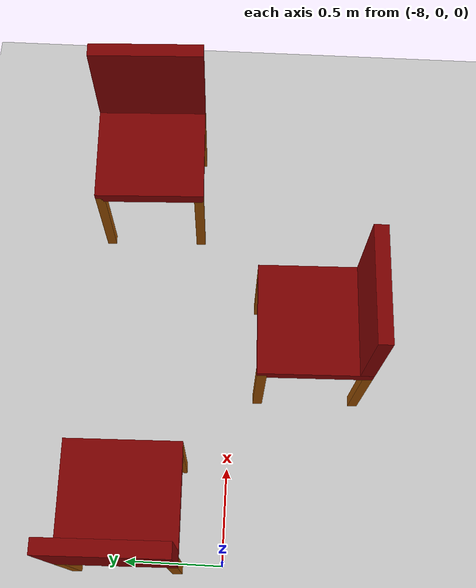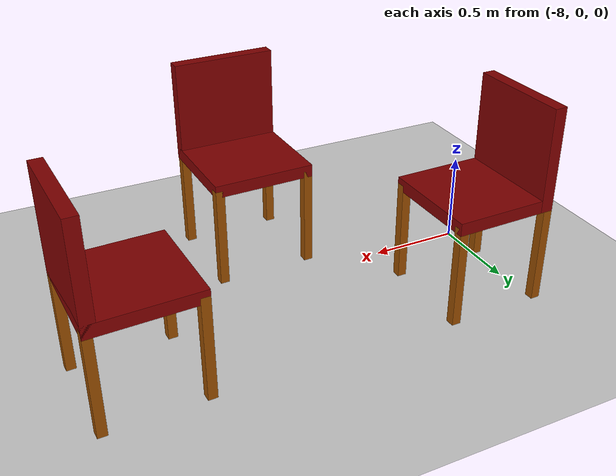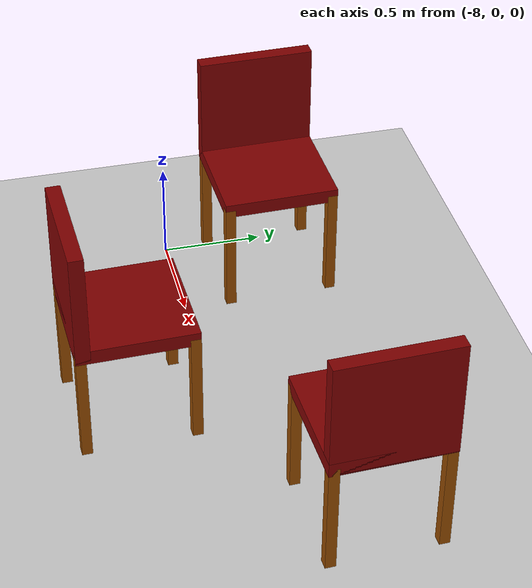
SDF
<sdf version="1.6">
 <world name="default">
  <model name="ground_plane">
   <static>1</static>
   <link name="link">
    <collision name="collision">
     <geometry><plane><normal>0 0 1</normal><size>100 100</size></plane></geometry>
     <surface>
      <contact><collide_bitmask>65535</collide_bitmask></contact>
      <friction><ode><mu>100</mu><mu2>50</mu2></ode></friction>
     </surface>
    </collision>
    <visual name="visual">
     <cast_shadows>0</cast_shadows>
     <geometry><plane><normal>0 0 1</normal><size>100 100</size></plane></geometry>
     <material>
      <script><uri>file://media/materials/scripts/gazebo.material</uri><name>Gazebo/Grey</name></script>
     </material>
    </visual>
   </link>
  </model>
  <model name="chair_3">
   <link name="link_0">
    <inertial>
     <mass>1</mass>
     <inertia>
      <ixx>0.166667</ixx>
      <ixy>0</ixy>
      <ixz>0</ixz>
      <iyy>0.166667</iyy>
      <iyz>0</iyz>
      <izz>0.166667</izz>
     </inertia>
    </inertial>
    <pose>0.000435 0.041667 0.148333 0 -0 0</pose>
    <visual name="visual">
     <geometry><box><size>0.57 0.57 0.07</size></box></geometry>
     <material>
      <lighting>1</lighting>
      <script><uri>file://media/materials/scripts/gazebo.material</uri><name>Gazebo/Grey</name></script>
      <shader type="vertex"><normal_map>__default__</normal_map></shader>
      <ambient>0.502 0 0 1</ambient>
      <diffuse>0.7 0.7 0.7 1</diffuse>
      <specular>0.01 0.01 0.01 1</specular>
      <emissive>0 0 0 1</emissive>
     </material>
    </visual>
    <collision name="collision">
     <geometry><box><size>0.57 0.57 0.07</size></box></geometry>
     <surface>
      <friction>
       <ode><mu>1</mu><mu2>1</mu2><fdir1>0 0 0</fdir1><slip1>0</slip1><slip2>0</slip2></ode>
       <torsional>
        <coefficient>1</coefficient>
        <patch_radius>0</patch_radius>
        <surface_radius>0</surface_radius>
        <use_patch_radius>1</use_patch_radius>
        <ode><slip>0</slip></ode>
       </torsional>
      </friction>
      <bounce><restitution_coefficient>0</restitution_coefficient><threshold>1e+06</threshold></bounce>
      <contact>
       <collide_without_contact>0</collide_without_contact>
       <collide_without_contact_bitmask>1</collide_without_contact_bitmask>
       <collide_bitmask>1</collide_bitmask>
       <ode>
        <soft_cfm>0</soft_cfm>
        <soft_erp>0.2</soft_erp>
        <kp>1e+13</kp>
        <kd>1</kd>
        <max_vel>0.01</max_vel>
        <min_depth>0</min_depth>
       </ode>
       <bullet>
        <split_impulse>1</split_impulse>
        <split_impulse_penetration_threshold>-0.01</split_impulse_penetration_threshold>
        <soft_cfm>0</soft_cfm>
        <soft_erp>0.2</soft_erp>
        <kp>1e+13</kp>
        <kd>1</kd>
       </bullet>
      </contact>
     </surface>
    </collision>
   </link>
   <link name="link_1">
    <inertial>
     <mass>1</mass>
     <inertia>
      <ixx>0.166667</ixx>
      <ixy>0</ixy>
      <ixz>0</ixz>
      <iyy>0.166667</iyy>
      <iyz>0</iyz>
      <izz>0.166667</izz>
     </inertia>
    </inertial>
    <pose>0.000435 -0.208333 0.398333 0 -0 0</pose>
    <visual name="visual">
     <geometry><box><size>0.57 0.07 0.57</size></box></geometry>
     <material>
      <lighting>1</lighting>
      <script><uri>file://media/materials/scripts/gazebo.material</uri><name>Gazebo/Grey</name></script>
      <shader type="vertex"><normal_map>__default__</normal_map></shader>
      <ambient>0.502 0 0 1</ambient>
      <diffuse>0.7 0.7 0.7 1</diffuse>
      <specular>0.01 0.01 0.01 1</specular>
      <emissive>0 0 0 1</emissive>
     </material>
    </visual>
    <collision name="collision">
     <geometry><box><size>0.57 0.07 0.57</size></box></geometry>
     <surface>
      <friction>
       <ode><mu>1</mu><mu2>1</mu2><fdir1>0 0 0</fdir1><slip1>0</slip1><slip2>0</slip2></ode>
       <torsional>
        <coefficient>1</coefficient>
        <patch_radius>0</patch_radius>
        <surface_radius>0</surface_radius>
        <use_patch_radius>1</use_patch_radius>
        <ode><slip>0</slip></ode>
       </torsional>
      </friction>
      <bounce><restitution_coefficient>0</restitution_coefficient><threshold>1e+06</threshold></bounce>
      <contact>
       <collide_without_contact>0</collide_without_contact>
       <collide_without_contact_bitmask>1</collide_without_contact_bitmask>
       <collide_bitmask>1</collide_bitmask>
       <ode>
        <soft_cfm>0</soft_cfm>
        <soft_erp>0.2</soft_erp>
        <kp>1e+13</kp>
        <kd>1</kd>
        <max_vel>0.01</max_vel>
        <min_depth>0</min_depth>
       </ode>
       <bullet>
        <split_impulse>1</split_impulse>
        <split_impulse_penetration_threshold>-0.01</split_impulse_penetration_threshold>
        <soft_cfm>0</soft_cfm>
        <soft_erp>0.2</soft_erp>
        <kp>1e+13</kp>
        <kd>1</kd>
       </bullet>
      </contact>
     </surface>
    </collision>
   </link>
   <link name="link_2">
    <inertial>
     <mass>1</mass>
     <inertia>
      <ixx>0.166667</ixx>
      <ixy>0</ixy>
      <ixz>0</ixz>
      <iyy>0.166667</iyy>
      <iyz>0</iyz>
      <izz>0.166667</izz>
     </inertia>
    </inertial>
    <pose>0.257825 -0.218333 -0.136667 0 -0 0</pose>
    <visual name="visual">
     <geometry><box><size>0.05 0.05 0.57</size></box></geometry>
     <material>
      <lighting>1</lighting>
      <script><uri>file://media/materials/scripts/gazebo.material</uri><name>Gazebo/Grey</name></script>
      <shader type="vertex"><normal_map>__default__</normal_map></shader>
      <ambient>0.588 0.294 0 1</ambient>
      <diffuse>0.7 0.7 0.7 1</diffuse>
      <specular>0.01 0.01 0.01 1</specular>
      <emissive>0 0 0 1</emissive>
     </material>
    </visual>
    <collision name="collision">
     <geometry><box><size>0.05 0.05 0.57</size></box></geometry>
     <surface>
      <friction>
       <ode><mu>1</mu><mu2>1</mu2><fdir1>0 0 0</fdir1><slip1>0</slip1><slip2>0</slip2></ode>
       <torsional>
        <coefficient>1</coefficient>
        <patch_radius>0</patch_radius>
        <surface_radius>0</surface_radius>
        <use_patch_radius>1</use_patch_radius>
        <ode><slip>0</slip></ode>
       </torsional>
      </friction>
      <bounce><restitution_coefficient>0</restitution_coefficient><threshold>1e+06</threshold></bounce>
      <contact>
       <collide_without_contact>0</collide_without_contact>
       <collide_without_contact_bitmask>1</collide_without_contact_bitmask>
       <collide_bitmask>1</collide_bitmask>
       <ode>
        <soft_cfm>0</soft_cfm>
        <soft_erp>0.2</soft_erp>
        <kp>1e+13</kp>
        <kd>1</kd>
        <max_vel>0.01</max_vel>
        <min_depth>0</min_depth>
       </ode>
       <bullet>
        <split_impulse>1</split_impulse>
        <split_impulse_penetration_threshold>-0.01</split_impulse_penetration_threshold>
        <soft_cfm>0</soft_cfm>
        <soft_erp>0.2</soft_erp>
        <kp>1e+13</kp>
        <kd>1</kd>
       </bullet>
      </contact>
     </surface>
    </collision>
   </link>
   <link name="link_2_clone">
    <inertial>
     <mass>1</mass>
     <inertia>
      <ixx>0.166667</ixx>
      <ixy>0</ixy>
      <ixz>0</ixz>
      <iyy>0.166667</iyy>
      <iyz>0</iyz>
      <izz>0.166667</izz>
     </inertia>
    </inertial>
    <pose>-0.259565 -0.218333 -0.136667 0 -0 0</pose>
    <visual name="visual">
     <geometry><box><size>0.05 0.05 0.57</size></box></geometry>
     <material>
      <lighting>1</lighting>
      <script><uri>file://media/materials/scripts/gazebo.material</uri><name>Gazebo/Grey</name></script>
      <shader type="vertex"><normal_map>__default__</normal_map></shader>
      <ambient>0.588 0.294 0 1</ambient>
      <diffuse>0.7 0.7 0.7 1</diffuse>
      <specular>0.01 0.01 0.01 1</specular>
      <emissive>0 0 0 1</emissive>
     </material>
    </visual>
    <collision name="collision">
     <geometry><box><size>0.05 0.05 0.57</size></box></geometry>
     <surface>
      <friction>
       <ode><mu>1</mu><mu2>1</mu2><fdir1>0 0 0</fdir1><slip1>0</slip1><slip2>0</slip2></ode>
       <torsional>
        <coefficient>1</coefficient>
        <patch_radius>0</patch_radius>
        <surface_radius>0</surface_radius>
        <use_patch_radius>1</use_patch_radius>
        <ode><slip>0</slip></ode>
       </torsional>
      </friction>
      <bounce><restitution_coefficient>0</restitution_coefficient><threshold>1e+06</threshold></bounce>
      <contact>
       <collide_without_contact>0</collide_without_contact>
       <collide_without_contact_bitmask>1</collide_without_contact_bitmask>
       <collide_bitmask>1</collide_bitmask>
       <ode>
        <soft_cfm>0</soft_cfm>
        <soft_erp>0.2</soft_erp>
        <kp>1e+13</kp>
        <kd>1</kd>
        <max_vel>0.01</max_vel>
        <min_depth>0</min_depth>
       </ode>
       <bullet>
        <split_impulse>1</split_impulse>
        <split_impulse_penetration_threshold>-0.01</split_impulse_penetration_threshold>
        <soft_cfm>0</soft_cfm>
        <soft_erp>0.2</soft_erp>
        <kp>1e+13</kp>
        <kd>1</kd>
       </bullet>
      </contact>
     </surface>
    </collision>
   </link>
   <link name="link_2_clone_clone">
    <inertial>
     <mass>1</mass>
     <inertia>
      <ixx>0.166667</ixx>
      <ixy>0</ixy>
      <ixz>0</ixz>
      <iyy>0.166667</iyy>
      <iyz>0</iyz>
      <izz>0.166667</izz>
     </inertia>
    </inertial>
    <pose>-0.259565 0.301667 -0.136667 0 -0 0</pose>
    <visual name="visual">
     <geometry><box><size>0.05 0.05 0.57</size></box></geometry>
     <material>
      <lighting>1</lighting>
      <script><uri>file://media/materials/scripts/gazebo.material</uri><name>Gazebo/Grey</name></script>
      <shader type="vertex"><normal_map>__default__</normal_map></shader>
      <ambient>0.588 0.294 0 1</ambient>
      <diffuse>0.7 0.7 0.7 1</diffuse>
      <specular>0.01 0.01 0.01 1</specular>
      <emissive>0 0 0 1</emissive>
     </material>
    </visual>
    <collision name="collision">
     <geometry><box><size>0.05 0.05 0.57</size></box></geometry>
     <surface>
      <friction>
       <ode><mu>1</mu><mu2>1</mu2><fdir1>0 0 0</fdir1><slip1>0</slip1><slip2>0</slip2></ode>
       <torsional>
        <coefficient>1</coefficient>
        <patch_radius>0</patch_radius>
        <surface_radius>0</surface_radius>
        <use_patch_radius>1</use_patch_radius>
        <ode><slip>0</slip></ode>
       </torsional>
      </friction>
      <bounce><restitution_coefficient>0</restitution_coefficient><threshold>1e+06</threshold></bounce>
      <contact>
       <collide_without_contact>0</collide_without_contact>
       <collide_without_contact_bitmask>1</collide_without_contact_bitmask>
       <collide_bitmask>1</collide_bitmask>
       <ode>
        <soft_cfm>0</soft_cfm>
        <soft_erp>0.2</soft_erp>
        <kp>1e+13</kp>
        <kd>1</kd>
        <max_vel>0.01</max_vel>
        <min_depth>0</min_depth>
       </ode>
       <bullet>
        <split_impulse>1</split_impulse>
        <split_impulse_penetration_threshold>-0.01</split_impulse_penetration_threshold>
        <soft_cfm>0</soft_cfm>
        <soft_erp>0.2</soft_erp>
        <kp>1e+13</kp>
        <kd>1</kd>
       </bullet>
      </contact>
     </surface>
    </collision>
   </link>
   <link name="link_2_clone_clone_0">
    <inertial>
     <mass>1</mass>
     <inertia>
      <ixx>0.166667</ixx>
      <ixy>0</ixy>
      <ixz>0</ixz>
      <iyy>0.166667</iyy>
      <iyz>0</iyz>
      <izz>0.166667</izz>
     </inertia>
    </inertial>
    <pose>0.260435 0.301667 -0.136667 0 -0 0</pose>
    <visual name="visual">
     <geometry><box><size>0.05 0.05 0.57</size></box></geometry>
     <material>
      <lighting>1</lighting>
      <script><uri>file://media/materials/scripts/gazebo.material</uri><name>Gazebo/Grey</name></script>
      <shader type="vertex"><normal_map>__default__</normal_map></shader>
      <ambient>0.588 0.294 0 1</ambient>
      <diffuse>0.7 0.7 0.7 1</diffuse>
      <specular>0.01 0.01 0.01 1</specular>
      <emissive>0 0 0 1</emissive>
     </material>
    </visual>
    <collision name="collision">
     <geometry><box><size>0.05 0.05 0.57</size></box></geometry>
     <surface>
      <friction>
       <ode><mu>1</mu><mu2>1</mu2><fdir1>0 0 0</fdir1><slip1>0</slip1><slip2>0</slip2></ode>
       <torsional>
        <coefficient>1</coefficient>
        <patch_radius>0</patch_radius>
        <surface_radius>0</surface_radius>
        <use_patch_radius>1</use_patch_radius>
        <ode><slip>0</slip></ode>
       </torsional>
      </friction>
      <bounce><restitution_coefficient>0</restitution_coefficient><threshold>1e+06</threshold></bounce>
      <contact>
       <collide_without_contact>0</collide_without_contact>
       <collide_without_contact_bitmask>1</collide_without_contact_bitmask>
       <collide_bitmask>1</collide_bitmask>
       <ode>
        <soft_cfm>0</soft_cfm>
        <soft_erp>0.2</soft_erp>
        <kp>1e+13</kp>
        <kd>1</kd>
        <max_vel>0.01</max_vel>
        <min_depth>0</min_depth>
       </ode>
       <bullet>
        <split_impulse>1</split_impulse>
        <split_impulse_penetration_threshold>-0.01</split_impulse_penetration_threshold>
        <soft_cfm>0</soft_cfm>
        <soft_erp>0.2</soft_erp>
        <kp>1e+13</kp>
        <kd>1</kd>
       </bullet>
      </contact>
     </surface>
    </collision>
   </link>
   <joint name="link_0_JOINT_0" type="fixed">
    <parent>link_0</parent>
    <child>link_1</child>
    <physics>
     <ode><limit><cfm>0</cfm><erp>0.2</erp></limit><suspension><cfm>0</cfm><erp>0.2</erp></suspension></ode>
    </physics>
   </joint>
   <joint name="link_0_JOINT_4" type="fixed">
    <parent>link_0</parent>
    <child>link_2</child>
    <physics>
     <ode><limit><cfm>0</cfm><erp>0.2</erp></limit><suspension><cfm>0</cfm><erp>0.2</erp></suspension></ode>
    </physics>
   </joint>
   <joint name="link_0_JOINT_5" type="fixed">
    <parent>link_0</parent>
    <child>link_2_clone</child>
    <physics>
     <ode><limit><cfm>0</cfm><erp>0.2</erp></limit><suspension><cfm>0</cfm><erp>0.2</erp></suspension></ode>
    </physics>
   </joint>
   <joint name="link_0_JOINT_6" type="fixed">
    <parent>link_0</parent>
    <child>link_2_clone_clone_0</child>
    <physics>
     <ode><limit><cfm>0</cfm><erp>0.2</erp></limit><suspension><cfm>0</cfm><erp>0.2</erp></suspension></ode>
    </physics>
   </joint>
   <joint name="link_0_JOINT_7" type="fixed">
    <parent>link_0</parent>
    <child>link_2_clone_clone</child>
    <physics>
     <ode><limit><cfm>0</cfm><erp>0.2</erp></limit><suspension><cfm>0</cfm><erp>0.2</erp></suspension></ode>
    </physics>
   </joint>
   <static>0</static>
   <pose>-5.87253 0.484838 0.421667 0 -1e-06 1.60775</pose>
  </model>
  <model name="chair_4">
   <link name="link_0">
    <inertial>
     <mass>1</mass>
     <inertia>
      <ixx>0.166667</ixx>
      <ixy>0</ixy>
      <ixz>0</ixz>
      <iyy>0.166667</iyy>
      <iyz>0</iyz>
      <izz>0.166667</izz>
     </inertia>
    </inertial>
    <pose>0.000435 0.041667 0.148333 0 -0 0</pose>
    <visual name="visual">
     <geometry><box><size>0.57 0.57 0.07</size></box></geometry>
     <material>
      <lighting>1</lighting>
      <script><uri>file://media/materials/scripts/gazebo.material</uri><name>Gazebo/Grey</name></script>
      <shader type="vertex"><normal_map>__default__</normal_map></shader>
      <ambient>0.502 0 0 1</ambient>
      <diffuse>0.7 0.7 0.7 1</diffuse>
      <specular>0.01 0.01 0.01 1</specular>
      <emissive>0 0 0 1</emissive>
     </material>
    </visual>
    <collision name="collision">
     <geometry><box><size>0.57 0.57 0.07</size></box></geometry>
     <surface>
      <friction>
       <ode><mu>1</mu><mu2>1</mu2><fdir1>0 0 0</fdir1><slip1>0</slip1><slip2>0</slip2></ode>
       <torsional>
        <coefficient>1</coefficient>
        <patch_radius>0</patch_radius>
        <surface_radius>0</surface_radius>
        <use_patch_radius>1</use_patch_radius>
        <ode><slip>0</slip></ode>
       </torsional>
      </friction>
      <bounce><restitution_coefficient>0</restitution_coefficient><threshold>1e+06</threshold></bounce>
      <contact>
       <collide_without_contact>0</collide_without_contact>
       <collide_without_contact_bitmask>1</collide_without_contact_bitmask>
       <collide_bitmask>1</collide_bitmask>
       <ode>
        <soft_cfm>0</soft_cfm>
        <soft_erp>0.2</soft_erp>
        <kp>1e+13</kp>
        <kd>1</kd>
        <max_vel>0.01</max_vel>
        <min_depth>0</min_depth>
       </ode>
       <bullet>
        <split_impulse>1</split_impulse>
        <split_impulse_penetration_threshold>-0.01</split_impulse_penetration_threshold>
        <soft_cfm>0</soft_cfm>
        <soft_erp>0.2</soft_erp>
        <kp>1e+13</kp>
        <kd>1</kd>
       </bullet>
      </contact>
     </surface>
    </collision>
   </link>
   <link name="link_1">
    <inertial>
     <mass>1</mass>
     <inertia>
      <ixx>0.166667</ixx>
      <ixy>0</ixy>
      <ixz>0</ixz>
      <iyy>0.166667</iyy>
      <iyz>0</iyz>
      <izz>0.166667</izz>
     </inertia>
    </inertial>
    <pose>0.000435 -0.208333 0.398333 0 -0 0</pose>
    <visual name="visual">
     <geometry><box><size>0.57 0.07 0.57</size></box></geometry>
     <material>
      <lighting>1</lighting>
      <script><uri>file://media/materials/scripts/gazebo.material</uri><name>Gazebo/Grey</name></script>
      <shader type="vertex"><normal_map>__default__</normal_map></shader>
      <ambient>0.502 0 0 1</ambient>
      <diffuse>0.7 0.7 0.7 1</diffuse>
      <specular>0.01 0.01 0.01 1</specular>
      <emissive>0 0 0 1</emissive>
     </material>
    </visual>
    <collision name="collision">
     <geometry><box><size>0.57 0.07 0.57</size></box></geometry>
     <surface>
      <friction>
       <ode><mu>1</mu><mu2>1</mu2><fdir1>0 0 0</fdir1><slip1>0</slip1><slip2>0</slip2></ode>
       <torsional>
        <coefficient>1</coefficient>
        <patch_radius>0</patch_radius>
        <surface_radius>0</surface_radius>
        <use_patch_radius>1</use_patch_radius>
        <ode><slip>0</slip></ode>
       </torsional>
      </friction>
      <bounce><restitution_coefficient>0</restitution_coefficient><threshold>1e+06</threshold></bounce>
      <contact>
       <collide_without_contact>0</collide_without_contact>
       <collide_without_contact_bitmask>1</collide_without_contact_bitmask>
       <collide_bitmask>1</collide_bitmask>
       <ode>
        <soft_cfm>0</soft_cfm>
        <soft_erp>0.2</soft_erp>
        <kp>1e+13</kp>
        <kd>1</kd>
        <max_vel>0.01</max_vel>
        <min_depth>0</min_depth>
       </ode>
       <bullet>
        <split_impulse>1</split_impulse>
        <split_impulse_penetration_threshold>-0.01</split_impulse_penetration_threshold>
        <soft_cfm>0</soft_cfm>
        <soft_erp>0.2</soft_erp>
        <kp>1e+13</kp>
        <kd>1</kd>
       </bullet>
      </contact>
     </surface>
    </collision>
   </link>
   <link name="link_2">
    <inertial>
     <mass>1</mass>
     <inertia>
      <ixx>0.166667</ixx>
      <ixy>0</ixy>
      <ixz>0</ixz>
      <iyy>0.166667</iyy>
      <iyz>0</iyz>
      <izz>0.166667</izz>
     </inertia>
    </inertial>
    <pose>0.257825 -0.218333 -0.136667 0 -0 0</pose>
    <visual name="visual">
     <geometry><box><size>0.05 0.05 0.57</size></box></geometry>
     <material>
      <lighting>1</lighting>
      <script><uri>file://media/materials/scripts/gazebo.material</uri><name>Gazebo/Grey</name></script>
      <shader type="vertex"><normal_map>__default__</normal_map></shader>
      <ambient>0.588 0.294 0 1</ambient>
      <diffuse>0.7 0.7 0.7 1</diffuse>
      <specular>0.01 0.01 0.01 1</specular>
      <emissive>0 0 0 1</emissive>
     </material>
    </visual>
    <collision name="collision">
     <geometry><box><size>0.05 0.05 0.57</size></box></geometry>
     <surface>
      <friction>
       <ode><mu>1</mu><mu2>1</mu2><fdir1>0 0 0</fdir1><slip1>0</slip1><slip2>0</slip2></ode>
       <torsional>
        <coefficient>1</coefficient>
        <patch_radius>0</patch_radius>
        <surface_radius>0</surface_radius>
        <use_patch_radius>1</use_patch_radius>
        <ode><slip>0</slip></ode>
       </torsional>
      </friction>
      <bounce><restitution_coefficient>0</restitution_coefficient><threshold>1e+06</threshold></bounce>
      <contact>
       <collide_without_contact>0</collide_without_contact>
       <collide_without_contact_bitmask>1</collide_without_contact_bitmask>
       <collide_bitmask>1</collide_bitmask>
       <ode>
        <soft_cfm>0</soft_cfm>
        <soft_erp>0.2</soft_erp>
        <kp>1e+13</kp>
        <kd>1</kd>
        <max_vel>0.01</max_vel>
        <min_depth>0</min_depth>
       </ode>
       <bullet>
        <split_impulse>1</split_impulse>
        <split_impulse_penetration_threshold>-0.01</split_impulse_penetration_threshold>
        <soft_cfm>0</soft_cfm>
        <soft_erp>0.2</soft_erp>
        <kp>1e+13</kp>
        <kd>1</kd>
       </bullet>
      </contact>
     </surface>
    </collision>
   </link>
   <link name="link_2_clone">
    <inertial>
     <mass>1</mass>
     <inertia>
      <ixx>0.166667</ixx>
      <ixy>0</ixy>
      <ixz>0</ixz>
      <iyy>0.166667</iyy>
      <iyz>0</iyz>
      <izz>0.166667</izz>
     </inertia>
    </inertial>
    <pose>-0.259565 -0.218333 -0.136667 0 -0 0</pose>
    <visual name="visual">
     <geometry><box><size>0.05 0.05 0.57</size></box></geometry>
     <material>
      <lighting>1</lighting>
      <script><uri>file://media/materials/scripts/gazebo.material</uri><name>Gazebo/Grey</name></script>
      <shader type="vertex"><normal_map>__default__</normal_map></shader>
      <ambient>0.588 0.294 0 1</ambient>
      <diffuse>0.7 0.7 0.7 1</diffuse>
      <specular>0.01 0.01 0.01 1</specular>
      <emissive>0 0 0 1</emissive>
     </material>
    </visual>
    <collision name="collision">
     <geometry><box><size>0.05 0.05 0.57</size></box></geometry>
     <surface>
      <friction>
       <ode><mu>1</mu><mu2>1</mu2><fdir1>0 0 0</fdir1><slip1>0</slip1><slip2>0</slip2></ode>
       <torsional>
        <coefficient>1</coefficient>
        <patch_radius>0</patch_radius>
        <surface_radius>0</surface_radius>
        <use_patch_radius>1</use_patch_radius>
        <ode><slip>0</slip></ode>
       </torsional>
      </friction>
      <bounce><restitution_coefficient>0</restitution_coefficient><threshold>1e+06</threshold></bounce>
      <contact>
       <collide_without_contact>0</collide_without_contact>
       <collide_without_contact_bitmask>1</collide_without_contact_bitmask>
       <collide_bitmask>1</collide_bitmask>
       <ode>
        <soft_cfm>0</soft_cfm>
        <soft_erp>0.2</soft_erp>
        <kp>1e+13</kp>
        <kd>1</kd>
        <max_vel>0.01</max_vel>
        <min_depth>0</min_depth>
       </ode>
       <bullet>
        <split_impulse>1</split_impulse>
        <split_impulse_penetration_threshold>-0.01</split_impulse_penetration_threshold>
        <soft_cfm>0</soft_cfm>
        <soft_erp>0.2</soft_erp>
        <kp>1e+13</kp>
        <kd>1</kd>
       </bullet>
      </contact>
     </surface>
    </collision>
   </link>
   <link name="link_2_clone_clone">
    <inertial>
     <mass>1</mass>
     <inertia>
      <ixx>0.166667</ixx>
      <ixy>0</ixy>
      <ixz>0</ixz>
      <iyy>0.166667</iyy>
      <iyz>0</iyz>
      <izz>0.166667</izz>
     </inertia>
    </inertial>
    <pose>-0.259565 0.301667 -0.136667 0 -0 0</pose>
    <visual name="visual">
     <geometry><box><size>0.05 0.05 0.57</size></box></geometry>
     <material>
      <lighting>1</lighting>
      <script><uri>file://media/materials/scripts/gazebo.material</uri><name>Gazebo/Grey</name></script>
      <shader type="vertex"><normal_map>__default__</normal_map></shader>
      <ambient>0.588 0.294 0 1</ambient>
      <diffuse>0.7 0.7 0.7 1</diffuse>
      <specular>0.01 0.01 0.01 1</specular>
      <emissive>0 0 0 1</emissive>
     </material>
    </visual>
    <collision name="collision">
     <geometry><box><size>0.05 0.05 0.57</size></box></geometry>
     <surface>
      <friction>
       <ode><mu>1</mu><mu2>1</mu2><fdir1>0 0 0</fdir1><slip1>0</slip1><slip2>0</slip2></ode>
       <torsional>
        <coefficient>1</coefficient>
        <patch_radius>0</patch_radius>
        <surface_radius>0</surface_radius>
        <use_patch_radius>1</use_patch_radius>
        <ode><slip>0</slip></ode>
       </torsional>
      </friction>
      <bounce><restitution_coefficient>0</restitution_coefficient><threshold>1e+06</threshold></bounce>
      <contact>
       <collide_without_contact>0</collide_without_contact>
       <collide_without_contact_bitmask>1</collide_without_contact_bitmask>
       <collide_bitmask>1</collide_bitmask>
       <ode>
        <soft_cfm>0</soft_cfm>
        <soft_erp>0.2</soft_erp>
        <kp>1e+13</kp>
        <kd>1</kd>
        <max_vel>0.01</max_vel>
        <min_depth>0</min_depth>
       </ode>
       <bullet>
        <split_impulse>1</split_impulse>
        <split_impulse_penetration_threshold>-0.01</split_impulse_penetration_threshold>
        <soft_cfm>0</soft_cfm>
        <soft_erp>0.2</soft_erp>
        <kp>1e+13</kp>
        <kd>1</kd>
       </bullet>
      </contact>
     </surface>
    </collision>
   </link>
   <link name="link_2_clone_clone_0">
    <inertial>
     <mass>1</mass>
     <inertia>
      <ixx>0.166667</ixx>
      <ixy>0</ixy>
      <ixz>0</ixz>
      <iyy>0.166667</iyy>
      <iyz>0</iyz>
      <izz>0.166667</izz>
     </inertia>
    </inertial>
    <pose>0.260435 0.301667 -0.136667 0 -0 0</pose>
    <visual name="visual">
     <geometry><box><size>0.05 0.05 0.57</size></box></geometry>
     <material>
      <lighting>1</lighting>
      <script><uri>file://media/materials/scripts/gazebo.material</uri><name>Gazebo/Grey</name></script>
      <shader type="vertex"><normal_map>__default__</normal_map></shader>
      <ambient>0.588 0.294 0 1</ambient>
      <diffuse>0.7 0.7 0.7 1</diffuse>
      <specular>0.01 0.01 0.01 1</specular>
      <emissive>0 0 0 1</emissive>
     </material>
    </visual>
    <collision name="collision">
     <geometry><box><size>0.05 0.05 0.57</size></box></geometry>
     <surface>
      <friction>
       <ode><mu>1</mu><mu2>1</mu2><fdir1>0 0 0</fdir1><slip1>0</slip1><slip2>0</slip2></ode>
       <torsional>
        <coefficient>1</coefficient>
        <patch_radius>0</patch_radius>
        <surface_radius>0</surface_radius>
        <use_patch_radius>1</use_patch_radius>
        <ode><slip>0</slip></ode>
       </torsional>
      </friction>
      <bounce><restitution_coefficient>0</restitution_coefficient><threshold>1e+06</threshold></bounce>
      <contact>
       <collide_without_contact>0</collide_without_contact>
       <collide_without_contact_bitmask>1</collide_without_contact_bitmask>
       <collide_bitmask>1</collide_bitmask>
       <ode>
        <soft_cfm>0</soft_cfm>
        <soft_erp>0.2</soft_erp>
        <kp>1e+13</kp>
        <kd>1</kd>
        <max_vel>0.01</max_vel>
        <min_depth>0</min_depth>
       </ode>
       <bullet>
        <split_impulse>1</split_impulse>
        <split_impulse_penetration_threshold>-0.01</split_impulse_penetration_threshold>
        <soft_cfm>0</soft_cfm>
        <soft_erp>0.2</soft_erp>
        <kp>1e+13</kp>
        <kd>1</kd>
       </bullet>
      </contact>
     </surface>
    </collision>
   </link>
   <joint name="link_0_JOINT_0" type="fixed">
    <parent>link_0</parent>
    <child>link_1</child>
    <physics>
     <ode><limit><cfm>0</cfm><erp>0.2</erp></limit><suspension><cfm>0</cfm><erp>0.2</erp></suspension></ode>
    </physics>
   </joint>
   <joint name="link_0_JOINT_4" type="fixed">
    <parent>link_0</parent>
    <child>link_2</child>
    <physics>
     <ode><limit><cfm>0</cfm><erp>0.2</erp></limit><suspension><cfm>0</cfm><erp>0.2</erp></suspension></ode>
    </physics>
   </joint>
   <joint name="link_0_JOINT_5" type="fixed">
    <parent>link_0</parent>
    <child>link_2_clone</child>
    <physics>
     <ode><limit><cfm>0</cfm><erp>0.2</erp></limit><suspension><cfm>0</cfm><erp>0.2</erp></suspension></ode>
    </physics>
   </joint>
   <joint name="link_0_JOINT_6" type="fixed">
    <parent>link_0</parent>
    <child>link_2_clone_clone_0</child>
    <physics>
     <ode><limit><cfm>0</cfm><erp>0.2</erp></limit><suspension><cfm>0</cfm><erp>0.2</erp></suspension></ode>
    </physics>
   </joint>
   <joint name="link_0_JOINT_7" type="fixed">
    <parent>link_0</parent>
    <child>link_2_clone_clone</child>
    <physics>
     <ode><limit><cfm>0</cfm><erp>0.2</erp></limit><suspension><cfm>0</cfm><erp>0.2</erp></suspension></ode>
    </physics>
   </joint>
   <static>0</static>
   <pose>-6.83781 -0.444356 0.421668 2e-06 -0 0.022793</pose>
  </model>
  <model name="chair_5">
   <link name="link_0">
    <inertial>
     <mass>1</mass>
     <inertia>
      <ixx>0.166667</ixx>
      <ixy>0</ixy>
      <ixz>0</ixz>
      <iyy>0.166667</iyy>
      <iyz>0</iyz>
      <izz>0.166667</izz>
     </inertia>
    </inertial>
    <pose>0.000435 0.041667 0.148333 0 -0 0</pose>
    <visual name="visual">
     <geometry><box><size>0.57 0.57 0.07</size></box></geometry>
     <material>
      <lighting>1</lighting>
      <script><uri>file://media/materials/scripts/gazebo.material</uri><name>Gazebo/Grey</name></script>
      <shader type="vertex"><normal_map>__default__</normal_map></shader>
      <ambient>0.502 0 0 1</ambient>
      <diffuse>0.7 0.7 0.7 1</diffuse>
      <specular>0.01 0.01 0.01 1</specular>
      <emissive>0 0 0 1</emissive>
     </material>
    </visual>
    <collision name="collision">
     <geometry><box><size>0.57 0.57 0.07</size></box></geometry>
     <surface>
      <friction>
       <ode><mu>1</mu><mu2>1</mu2><fdir1>0 0 0</fdir1><slip1>0</slip1><slip2>0</slip2></ode>
       <torsional>
        <coefficient>1</coefficient>
        <patch_radius>0</patch_radius>
        <surface_radius>0</surface_radius>
        <use_patch_radius>1</use_patch_radius>
        <ode><slip>0</slip></ode>
       </torsional>
      </friction>
      <bounce><restitution_coefficient>0</restitution_coefficient><threshold>1e+06</threshold></bounce>
      <contact>
       <collide_without_contact>0</collide_without_contact>
       <collide_without_contact_bitmask>1</collide_without_contact_bitmask>
       <collide_bitmask>1</collide_bitmask>
       <ode>
        <soft_cfm>0</soft_cfm>
        <soft_erp>0.2</soft_erp>
        <kp>1e+13</kp>
        <kd>1</kd>
        <max_vel>0.01</max_vel>
        <min_depth>0</min_depth>
       </ode>
       <bullet>
        <split_impulse>1</split_impulse>
        <split_impulse_penetration_threshold>-0.01</split_impulse_penetration_threshold>
        <soft_cfm>0</soft_cfm>
        <soft_erp>0.2</soft_erp>
        <kp>1e+13</kp>
        <kd>1</kd>
       </bullet>
      </contact>
     </surface>
    </collision>
   </link>
   <link name="link_1">
    <inertial>
     <mass>1</mass>
     <inertia>
      <ixx>0.166667</ixx>
      <ixy>0</ixy>
      <ixz>0</ixz>
      <iyy>0.166667</iyy>
      <iyz>0</iyz>
      <izz>0.166667</izz>
     </inertia>
    </inertial>
    <pose>0.000435 -0.208333 0.398333 0 -0 0</pose>
    <visual name="visual">
     <geometry><box><size>0.57 0.07 0.57</size></box></geometry>
     <material>
      <lighting>1</lighting>
      <script><uri>file://media/materials/scripts/gazebo.material</uri><name>Gazebo/Grey</name></script>
      <shader type="vertex"><normal_map>__default__</normal_map></shader>
      <ambient>0.502 0 0 1</ambient>
      <diffuse>0.7 0.7 0.7 1</diffuse>
      <specular>0.01 0.01 0.01 1</specular>
      <emissive>0 0 0 1</emissive>
     </material>
    </visual>
    <collision name="collision">
     <geometry><box><size>0.57 0.07 0.57</size></box></geometry>
     <surface>
      <friction>
       <ode><mu>1</mu><mu2>1</mu2><fdir1>0 0 0</fdir1><slip1>0</slip1><slip2>0</slip2></ode>
       <torsional>
        <coefficient>1</coefficient>
        <patch_radius>0</patch_radius>
        <surface_radius>0</surface_radius>
        <use_patch_radius>1</use_patch_radius>
        <ode><slip>0</slip></ode>
       </torsional>
      </friction>
      <bounce><restitution_coefficient>0</restitution_coefficient><threshold>1e+06</threshold></bounce>
      <contact>
       <collide_without_contact>0</collide_without_contact>
       <collide_without_contact_bitmask>1</collide_without_contact_bitmask>
       <collide_bitmask>1</collide_bitmask>
       <ode>
        <soft_cfm>0</soft_cfm>
        <soft_erp>0.2</soft_erp>
        <kp>1e+13</kp>
        <kd>1</kd>
        <max_vel>0.01</max_vel>
        <min_depth>0</min_depth>
       </ode>
       <bullet>
        <split_impulse>1</split_impulse>
        <split_impulse_penetration_threshold>-0.01</split_impulse_penetration_threshold>
        <soft_cfm>0</soft_cfm>
        <soft_erp>0.2</soft_erp>
        <kp>1e+13</kp>
        <kd>1</kd>
       </bullet>
      </contact>
     </surface>
    </collision>
   </link>
   <link name="link_2">
    <inertial>
     <mass>1</mass>
     <inertia>
      <ixx>0.166667</ixx>
      <ixy>0</ixy>
      <ixz>0</ixz>
      <iyy>0.166667</iyy>
      <iyz>0</iyz>
      <izz>0.166667</izz>
     </inertia>
    </inertial>
    <pose>0.257825 -0.218333 -0.136667 0 -0 0</pose>
    <visual name="visual">
     <geometry><box><size>0.05 0.05 0.57</size></box></geometry>
     <material>
      <lighting>1</lighting>
      <script><uri>file://media/materials/scripts/gazebo.material</uri><name>Gazebo/Grey</name></script>
      <shader type="vertex"><normal_map>__default__</normal_map></shader>
      <ambient>0.588 0.294 0 1</ambient>
      <diffuse>0.7 0.7 0.7 1</diffuse>
      <specular>0.01 0.01 0.01 1</specular>
      <emissive>0 0 0 1</emissive>
     </material>
    </visual>
    <collision name="collision">
     <geometry><box><size>0.05 0.05 0.57</size></box></geometry>
     <surface>
      <friction>
       <ode><mu>1</mu><mu2>1</mu2><fdir1>0 0 0</fdir1><slip1>0</slip1><slip2>0</slip2></ode>
       <torsional>
        <coefficient>1</coefficient>
        <patch_radius>0</patch_radius>
        <surface_radius>0</surface_radius>
        <use_patch_radius>1</use_patch_radius>
        <ode><slip>0</slip></ode>
       </torsional>
      </friction>
      <bounce><restitution_coefficient>0</restitution_coefficient><threshold>1e+06</threshold></bounce>
      <contact>
       <collide_without_contact>0</collide_without_contact>
       <collide_without_contact_bitmask>1</collide_without_contact_bitmask>
       <collide_bitmask>1</collide_bitmask>
       <ode>
        <soft_cfm>0</soft_cfm>
        <soft_erp>0.2</soft_erp>
        <kp>1e+13</kp>
        <kd>1</kd>
        <max_vel>0.01</max_vel>
        <min_depth>0</min_depth>
       </ode>
       <bullet>
        <split_impulse>1</split_impulse>
        <split_impulse_penetration_threshold>-0.01</split_impulse_penetration_threshold>
        <soft_cfm>0</soft_cfm>
        <soft_erp>0.2</soft_erp>
        <kp>1e+13</kp>
        <kd>1</kd>
       </bullet>
      </contact>
     </surface>
    </collision>
   </link>
   <link name="link_2_clone">
    <inertial>
     <mass>1</mass>
     <inertia>
      <ixx>0.166667</ixx>
      <ixy>0</ixy>
      <ixz>0</ixz>
      <iyy>0.166667</iyy>
      <iyz>0</iyz>
      <izz>0.166667</izz>
     </inertia>
    </inertial>
    <pose>-0.259565 -0.218333 -0.136667 0 -0 0</pose>
    <visual name="visual">
     <geometry><box><size>0.05 0.05 0.57</size></box></geometry>
     <material>
      <lighting>1</lighting>
      <script><uri>file://media/materials/scripts/gazebo.material</uri><name>Gazebo/Grey</name></script>
      <shader type="vertex"><normal_map>__default__</normal_map></shader>
      <ambient>0.588 0.294 0 1</ambient>
      <diffuse>0.7 0.7 0.7 1</diffuse>
      <specular>0.01 0.01 0.01 1</specular>
      <emissive>0 0 0 1</emissive>
     </material>
    </visual>
    <collision name="collision">
     <geometry><box><size>0.05 0.05 0.57</size></box></geometry>
     <surface>
      <friction>
       <ode><mu>1</mu><mu2>1</mu2><fdir1>0 0 0</fdir1><slip1>0</slip1><slip2>0</slip2></ode>
       <torsional>
        <coefficient>1</coefficient>
        <patch_radius>0</patch_radius>
        <surface_radius>0</surface_radius>
        <use_patch_radius>1</use_patch_radius>
        <ode><slip>0</slip></ode>
       </torsional>
      </friction>
      <bounce><restitution_coefficient>0</restitution_coefficient><threshold>1e+06</threshold></bounce>
      <contact>
       <collide_without_contact>0</collide_without_contact>
       <collide_without_contact_bitmask>1</collide_without_contact_bitmask>
       <collide_bitmask>1</collide_bitmask>
       <ode>
        <soft_cfm>0</soft_cfm>
        <soft_erp>0.2</soft_erp>
        <kp>1e+13</kp>
        <kd>1</kd>
        <max_vel>0.01</max_vel>
        <min_depth>0</min_depth>
       </ode>
       <bullet>
        <split_impulse>1</split_impulse>
        <split_impulse_penetration_threshold>-0.01</split_impulse_penetration_threshold>
        <soft_cfm>0</soft_cfm>
        <soft_erp>0.2</soft_erp>
        <kp>1e+13</kp>
        <kd>1</kd>
       </bullet>
      </contact>
     </surface>
    </collision>
   </link>
   <link name="link_2_clone_clone">
    <inertial>
     <mass>1</mass>
     <inertia>
      <ixx>0.166667</ixx>
      <ixy>0</ixy>
      <ixz>0</ixz>
      <iyy>0.166667</iyy>
      <iyz>0</iyz>
      <izz>0.166667</izz>
     </inertia>
    </inertial>
    <pose>-0.259565 0.301667 -0.136667 0 -0 0</pose>
    <visual name="visual">
     <geometry><box><size>0.05 0.05 0.57</size></box></geometry>
     <material>
      <lighting>1</lighting>
      <script><uri>file://media/materials/scripts/gazebo.material</uri><name>Gazebo/Grey</name></script>
      <shader type="vertex"><normal_map>__default__</normal_map></shader>
      <ambient>0.588 0.294 0 1</ambient>
      <diffuse>0.7 0.7 0.7 1</diffuse>
      <specular>0.01 0.01 0.01 1</specular>
      <emissive>0 0 0 1</emissive>
     </material>
    </visual>
    <collision name="collision">
     <geometry><box><size>0.05 0.05 0.57</size></box></geometry>
     <surface>
      <friction>
       <ode><mu>1</mu><mu2>1</mu2><fdir1>0 0 0</fdir1><slip1>0</slip1><slip2>0</slip2></ode>
       <torsional>
        <coefficient>1</coefficient>
        <patch_radius>0</patch_radius>
        <surface_radius>0</surface_radius>
        <use_patch_radius>1</use_patch_radius>
        <ode><slip>0</slip></ode>
       </torsional>
      </friction>
      <bounce><restitution_coefficient>0</restitution_coefficient><threshold>1e+06</threshold></bounce>
      <contact>
       <collide_without_contact>0</collide_without_contact>
       <collide_without_contact_bitmask>1</collide_without_contact_bitmask>
       <collide_bitmask>1</collide_bitmask>
       <ode>
        <soft_cfm>0</soft_cfm>
        <soft_erp>0.2</soft_erp>
        <kp>1e+13</kp>
        <kd>1</kd>
        <max_vel>0.01</max_vel>
        <min_depth>0</min_depth>
       </ode>
       <bullet>
        <split_impulse>1</split_impulse>
        <split_impulse_penetration_threshold>-0.01</split_impulse_penetration_threshold>
        <soft_cfm>0</soft_cfm>
        <soft_erp>0.2</soft_erp>
        <kp>1e+13</kp>
        <kd>1</kd>
       </bullet>
      </contact>
     </surface>
    </collision>
   </link>
   <link name="link_2_clone_clone_0">
    <inertial>
     <mass>1</mass>
     <inertia>
      <ixx>0.166667</ixx>
      <ixy>0</ixy>
      <ixz>0</ixz>
      <iyy>0.166667</iyy>
      <iyz>0</iyz>
      <izz>0.166667</izz>
     </inertia>
    </inertial>
    <pose>0.260435 0.301667 -0.136667 0 -0 0</pose>
    <visual name="visual">
     <geometry><box><size>0.05 0.05 0.57</size></box></geometry>
     <material>
      <lighting>1</lighting>
      <script><uri>file://media/materials/scripts/gazebo.material</uri><name>Gazebo/Grey</name></script>
      <shader type="vertex"><normal_map>__default__</normal_map></shader>
      <ambient>0.588 0.294 0 1</ambient>
      <diffuse>0.7 0.7 0.7 1</diffuse>
      <specular>0.01 0.01 0.01 1</specular>
      <emissive>0 0 0 1</emissive>
     </material>
    </visual>
    <collision name="collision">
     <geometry><box><size>0.05 0.05 0.57</size></box></geometry>
     <surface>
      <friction>
       <ode><mu>1</mu><mu2>1</mu2><fdir1>0 0 0</fdir1><slip1>0</slip1><slip2>0</slip2></ode>
       <torsional>
        <coefficient>1</coefficient>
        <patch_radius>0</patch_radius>
        <surface_radius>0</surface_radius>
        <use_patch_radius>1</use_patch_radius>
        <ode><slip>0</slip></ode>
       </torsional>
      </friction>
      <bounce><restitution_coefficient>0</restitution_coefficient><threshold>1e+06</threshold></bounce>
      <contact>
       <collide_without_contact>0</collide_without_contact>
       <collide_without_contact_bitmask>1</collide_without_contact_bitmask>
       <collide_bitmask>1</collide_bitmask>
       <ode>
        <soft_cfm>0</soft_cfm>
        <soft_erp>0.2</soft_erp>
        <kp>1e+13</kp>
        <kd>1</kd>
        <max_vel>0.01</max_vel>
        <min_depth>0</min_depth>
       </ode>
       <bullet>
        <split_impulse>1</split_impulse>
        <split_impulse_penetration_threshold>-0.01</split_impulse_penetration_threshold>
        <soft_cfm>0</soft_cfm>
        <soft_erp>0.2</soft_erp>
        <kp>1e+13</kp>
        <kd>1</kd>
       </bullet>
      </contact>
     </surface>
    </collision>
   </link>
   <joint name="link_0_JOINT_0" type="fixed">
    <parent>link_0</parent>
    <child>link_1</child>
    <physics>
     <ode><limit><cfm>0</cfm><erp>0.2</erp></limit><suspension><cfm>0</cfm><erp>0.2</erp></suspension></ode>
    </physics>
   </joint>
   <joint name="link_0_JOINT_4" type="fixed">
    <parent>link_0</parent>
    <child>link_2</child>
    <physics>
     <ode><limit><cfm>0</cfm><erp>0.2</erp></limit><suspension><cfm>0</cfm><erp>0.2</erp></suspension></ode>
    </physics>
   </joint>
   <joint name="link_0_JOINT_5" type="fixed">
    <parent>link_0</parent>
    <child>link_2_clone</child>
    <physics>
     <ode><limit><cfm>0</cfm><erp>0.2</erp></limit><suspension><cfm>0</cfm><erp>0.2</erp></suspension></ode>
    </physics>
   </joint>
   <joint name="link_0_JOINT_6" type="fixed">
    <parent>link_0</parent>
    <child>link_2_clone_clone_0</child>
    <physics>
     <ode><limit><cfm>0</cfm><erp>0.2</erp></limit><suspension><cfm>0</cfm><erp>0.2</erp></suspension></ode>
    </physics>
   </joint>
   <joint name="link_0_JOINT_7" type="fixed">
    <parent>link_0</parent>
    <child>link_2_clone_clone</child>
    <physics>
     <ode><limit><cfm>0</cfm><erp>0.2</erp></limit><suspension><cfm>0</cfm><erp>0.2</erp></suspension></ode>
    </physics>
   </joint>
   <static>0</static>
   <pose>-7.81077 0.489319 0.421667 1e-06 2e-06 -1.54953</pose>
  </model>
 </world>
</sdf>
